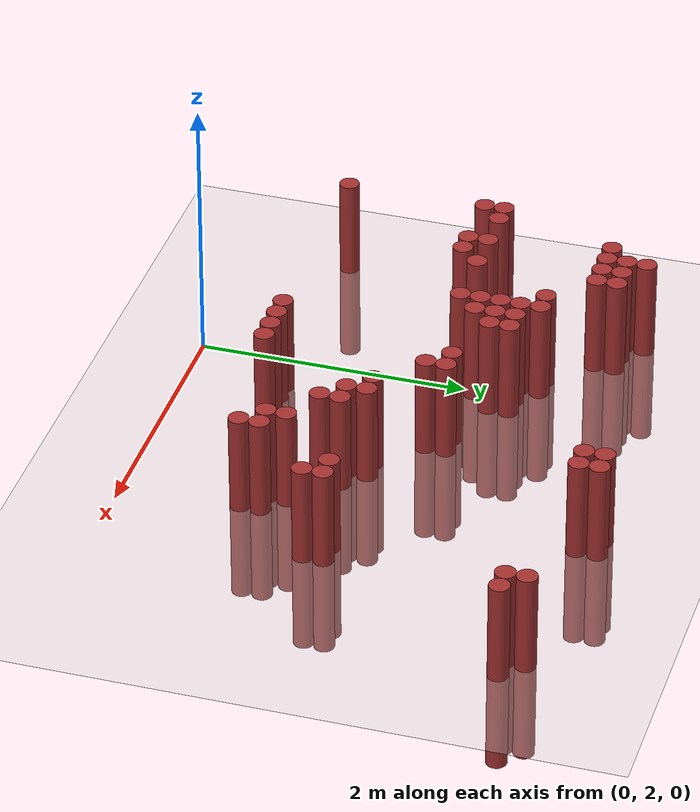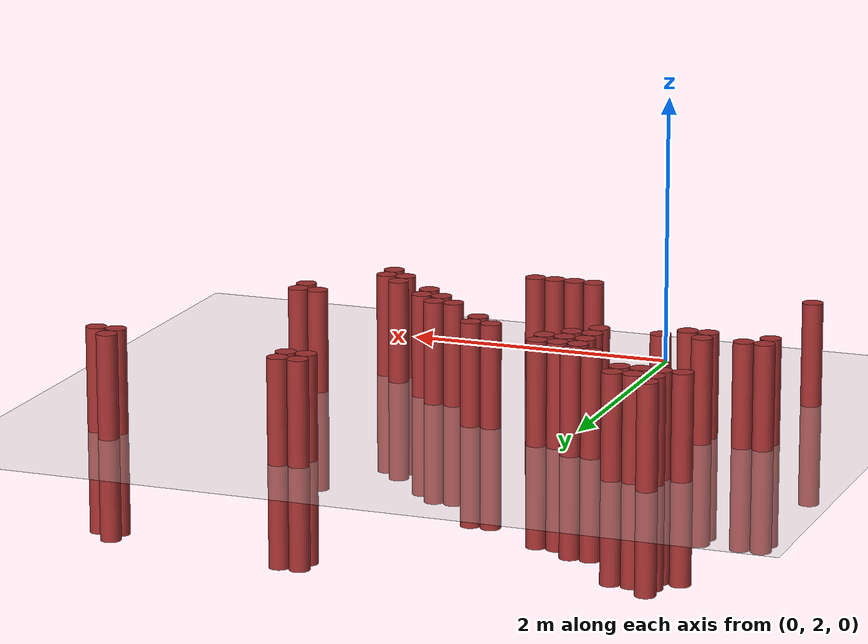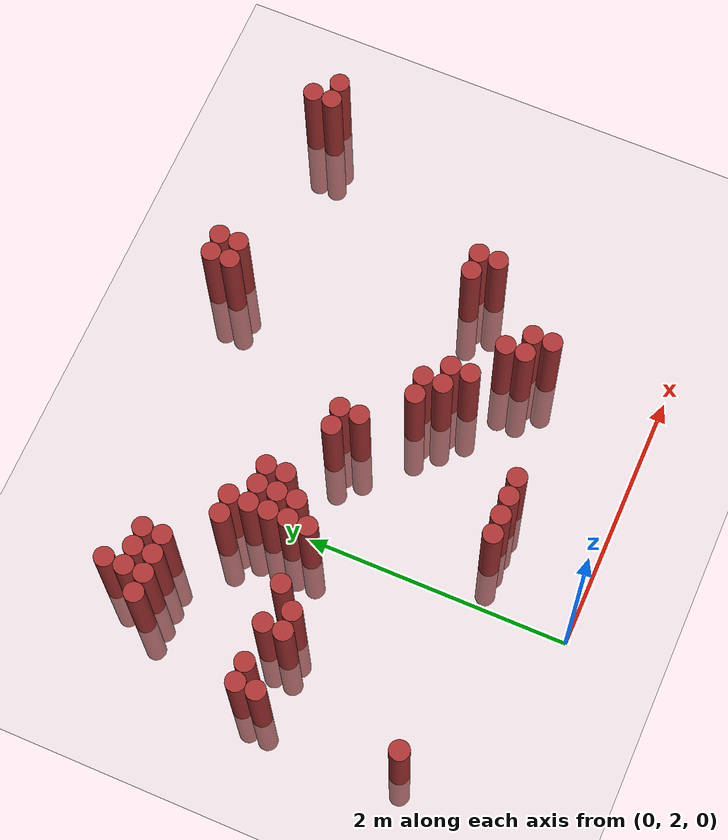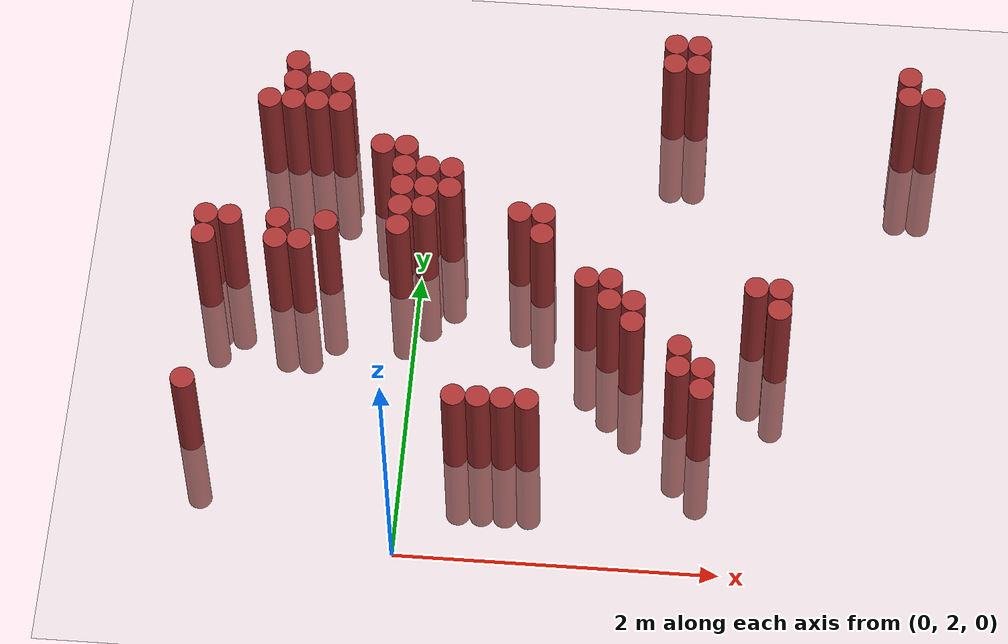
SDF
<sdf version="1.6">
 <world name="default">
  <model name="ground_plane">
   <static>1</static>
   <link name="link">
    <collision name="collision">
     <geometry><plane><normal>0 0 1</normal><size>100 100</size></plane></geometry>
     <surface><friction><ode><mu>100</mu><mu2>50</mu2></ode></friction></surface>
    </collision>
    <visual name="visual">
     <cast_shadows>0</cast_shadows>
     <geometry><plane><normal>0 0 1</normal><size>100 100</size></plane></geometry>
     <material>
      <script><uri>file://media/materials/scripts/gazebo.material</uri><name>Gazebo/Grey</name></script>
     </material>
    </visual>
   </link>
  </model>
  <model name="unit_cylinder_331">
   <static>1</static>
   <pose>-1.325000 2.725000 0.000000 0.000000 0.000000 0.000000</pose>
   <link name="link">
    <inertial>
     <mass>1</mass>
     <inertia><ixx>0.145833</ixx><ixy>0</ixy><ixz>0</ixz><iyy>0.145833</iyy><iyz>0</iyz><izz>0.125</izz></inertia>
    </inertial>
    <collision name="collision">
     <geometry><cylinder><radius>0.075000</radius><length>1.5</length></cylinder></geometry>
    </collision>
    <visual name="visual">
     <geometry><cylinder><radius>0.075000</radius><length>1.5</length></cylinder></geometry>
     <material>
      <ambient>0.648000 0.192000 0.192000 1</ambient>
      <diffuse>0.648000 0.192000 0.192000 1</diffuse>
     </material>
     <material>
      <script><name>Gazebo/Grey</name><uri>file://media/materials/scripts/gazebo.material</uri></script>
     </material>
    </visual>
   </link>
  </model>
  <model name="unit_cylinder_332">
   <static>1</static>
   <pose>-1.325000 3.775000 0.000000 0.000000 0.000000 0.000000</pose>
   <link name="link">
    <inertial>
     <mass>1</mass>
     <inertia><ixx>0.145833</ixx><ixy>0</ixy><ixz>0</ixz><iyy>0.145833</iyy><iyz>0</iyz><izz>0.125</izz></inertia>
    </inertial>
    <collision name="collision">
     <geometry><cylinder><radius>0.075000</radius><length>1.5</length></cylinder></geometry>
    </collision>
    <visual name="visual">
     <geometry><cylinder><radius>0.075000</radius><length>1.5</length></cylinder></geometry>
     <material>
      <ambient>0.648000 0.192000 0.192000 1</ambient>
      <diffuse>0.648000 0.192000 0.192000 1</diffuse>
     </material>
     <material>
      <script><name>Gazebo/Grey</name><uri>file://media/materials/scripts/gazebo.material</uri></script>
     </material>
    </visual>
   </link>
  </model>
  <model name="unit_cylinder_333">
   <static>1</static>
   <pose>-1.325000 3.925000 0.000000 0.000000 0.000000 0.000000</pose>
   <link name="link">
    <inertial>
     <mass>1</mass>
     <inertia><ixx>0.145833</ixx><ixy>0</ixy><ixz>0</ixz><iyy>0.145833</iyy><iyz>0</iyz><izz>0.125</izz></inertia>
    </inertial>
    <collision name="collision">
     <geometry><cylinder><radius>0.075000</radius><length>1.5</length></cylinder></geometry>
    </collision>
    <visual name="visual">
     <geometry><cylinder><radius>0.075000</radius><length>1.5</length></cylinder></geometry>
     <material>
      <ambient>0.648000 0.192000 0.192000 1</ambient>
      <diffuse>0.648000 0.192000 0.192000 1</diffuse>
     </material>
     <material>
      <script><name>Gazebo/Grey</name><uri>file://media/materials/scripts/gazebo.material</uri></script>
     </material>
    </visual>
   </link>
  </model>
  <model name="unit_cylinder_341">
   <static>1</static>
   <pose>-1.175000 3.925000 0.000000 0.000000 0.000000 0.000000</pose>
   <link name="link">
    <inertial>
     <mass>1</mass>
     <inertia><ixx>0.145833</ixx><ixy>0</ixy><ixz>0</ixz><iyy>0.145833</iyy><iyz>0</iyz><izz>0.125</izz></inertia>
    </inertial>
    <collision name="collision">
     <geometry><cylinder><radius>0.075000</radius><length>1.5</length></cylinder></geometry>
    </collision>
    <visual name="visual">
     <geometry><cylinder><radius>0.075000</radius><length>1.5</length></cylinder></geometry>
     <material>
      <ambient>0.648000 0.192000 0.192000 1</ambient>
      <diffuse>0.648000 0.192000 0.192000 1</diffuse>
     </material>
     <material>
      <script><name>Gazebo/Grey</name><uri>file://media/materials/scripts/gazebo.material</uri></script>
     </material>
    </visual>
   </link>
  </model>
  <model name="unit_cylinder_347">
   <static>1</static>
   <pose>-1.025000 4.825000 0.000000 0.000000 0.000000 0.000000</pose>
   <link name="link">
    <inertial>
     <mass>1</mass>
     <inertia><ixx>0.145833</ixx><ixy>0</ixy><ixz>0</ixz><iyy>0.145833</iyy><iyz>0</iyz><izz>0.125</izz></inertia>
    </inertial>
    <collision name="collision">
     <geometry><cylinder><radius>0.075000</radius><length>1.5</length></cylinder></geometry>
    </collision>
    <visual name="visual">
     <geometry><cylinder><radius>0.075000</radius><length>1.5</length></cylinder></geometry>
     <material>
      <ambient>0.648000 0.192000 0.192000 1</ambient>
      <diffuse>0.648000 0.192000 0.192000 1</diffuse>
     </material>
     <material>
      <script><name>Gazebo/Grey</name><uri>file://media/materials/scripts/gazebo.material</uri></script>
     </material>
    </visual>
   </link>
  </model>
  <model name="unit_cylinder_352">
   <static>1</static>
   <pose>-0.875000 3.775000 0.000000 0.000000 0.000000 0.000000</pose>
   <link name="link">
    <inertial>
     <mass>1</mass>
     <inertia><ixx>0.145833</ixx><ixy>0</ixy><ixz>0</ixz><iyy>0.145833</iyy><iyz>0</iyz><izz>0.125</izz></inertia>
    </inertial>
    <collision name="collision">
     <geometry><cylinder><radius>0.075000</radius><length>1.5</length></cylinder></geometry>
    </collision>
    <visual name="visual">
     <geometry><cylinder><radius>0.075000</radius><length>1.5</length></cylinder></geometry>
     <material>
      <ambient>0.648000 0.192000 0.192000 1</ambient>
      <diffuse>0.648000 0.192000 0.192000 1</diffuse>
     </material>
     <material>
      <script><name>Gazebo/Grey</name><uri>file://media/materials/scripts/gazebo.material</uri></script>
     </material>
    </visual>
   </link>
  </model>
  <model name="unit_cylinder_353">
   <static>1</static>
   <pose>-0.875000 3.925000 0.000000 0.000000 0.000000 0.000000</pose>
   <link name="link">
    <inertial>
     <mass>1</mass>
     <inertia><ixx>0.145833</ixx><ixy>0</ixy><ixz>0</ixz><iyy>0.145833</iyy><iyz>0</iyz><izz>0.125</izz></inertia>
    </inertial>
    <collision name="collision">
     <geometry><cylinder><radius>0.075000</radius><length>1.5</length></cylinder></geometry>
    </collision>
    <visual name="visual">
     <geometry><cylinder><radius>0.075000</radius><length>1.5</length></cylinder></geometry>
     <material>
      <ambient>0.648000 0.192000 0.192000 1</ambient>
      <diffuse>0.648000 0.192000 0.192000 1</diffuse>
     </material>
     <material>
      <script><name>Gazebo/Grey</name><uri>file://media/materials/scripts/gazebo.material</uri></script>
     </material>
    </visual>
   </link>
  </model>
  <model name="unit_cylinder_354">
   <static>1</static>
   <pose>-0.875000 4.825000 0.000000 0.000000 0.000000 0.000000</pose>
   <link name="link">
    <inertial>
     <mass>1</mass>
     <inertia><ixx>0.145833</ixx><ixy>0</ixy><ixz>0</ixz><iyy>0.145833</iyy><iyz>0</iyz><izz>0.125</izz></inertia>
    </inertial>
    <collision name="collision">
     <geometry><cylinder><radius>0.075000</radius><length>1.5</length></cylinder></geometry>
    </collision>
    <visual name="visual">
     <geometry><cylinder><radius>0.075000</radius><length>1.5</length></cylinder></geometry>
     <material>
      <ambient>0.648000 0.192000 0.192000 1</ambient>
      <diffuse>0.648000 0.192000 0.192000 1</diffuse>
     </material>
     <material>
      <script><name>Gazebo/Grey</name><uri>file://media/materials/scripts/gazebo.material</uri></script>
     </material>
    </visual>
   </link>
  </model>
  <model name="unit_cylinder_355">
   <static>1</static>
   <pose>-0.875000 4.975000 0.000000 0.000000 0.000000 0.000000</pose>
   <link name="link">
    <inertial>
     <mass>1</mass>
     <inertia><ixx>0.145833</ixx><ixy>0</ixy><ixz>0</ixz><iyy>0.145833</iyy><iyz>0</iyz><izz>0.125</izz></inertia>
    </inertial>
    <collision name="collision">
     <geometry><cylinder><radius>0.075000</radius><length>1.5</length></cylinder></geometry>
    </collision>
    <visual name="visual">
     <geometry><cylinder><radius>0.075000</radius><length>1.5</length></cylinder></geometry>
     <material>
      <ambient>0.648000 0.192000 0.192000 1</ambient>
      <diffuse>0.648000 0.192000 0.192000 1</diffuse>
     </material>
     <material>
      <script><name>Gazebo/Grey</name><uri>file://media/materials/scripts/gazebo.material</uri></script>
     </material>
    </visual>
   </link>
  </model>
  <model name="unit_cylinder_356">
   <static>1</static>
   <pose>-0.875000 5.125000 0.000000 0.000000 0.000000 0.000000</pose>
   <link name="link">
    <inertial>
     <mass>1</mass>
     <inertia><ixx>0.145833</ixx><ixy>0</ixy><ixz>0</ixz><iyy>0.145833</iyy><iyz>0</iyz><izz>0.125</izz></inertia>
    </inertial>
    <collision name="collision">
     <geometry><cylinder><radius>0.075000</radius><length>1.5</length></cylinder></geometry>
    </collision>
    <visual name="visual">
     <geometry><cylinder><radius>0.075000</radius><length>1.5</length></cylinder></geometry>
     <material>
      <ambient>0.648000 0.192000 0.192000 1</ambient>
      <diffuse>0.648000 0.192000 0.192000 1</diffuse>
     </material>
     <material>
      <script><name>Gazebo/Grey</name><uri>file://media/materials/scripts/gazebo.material</uri></script>
     </material>
    </visual>
   </link>
  </model>
  <model name="unit_cylinder_361">
   <static>1</static>
   <pose>-0.725000 3.775000 0.000000 0.000000 0.000000 0.000000</pose>
   <link name="link">
    <inertial>
     <mass>1</mass>
     <inertia><ixx>0.145833</ixx><ixy>0</ixy><ixz>0</ixz><iyy>0.145833</iyy><iyz>0</iyz><izz>0.125</izz></inertia>
    </inertial>
    <collision name="collision">
     <geometry><cylinder><radius>0.075000</radius><length>1.5</length></cylinder></geometry>
    </collision>
    <visual name="visual">
     <geometry><cylinder><radius>0.075000</radius><length>1.5</length></cylinder></geometry>
     <material>
      <ambient>0.648000 0.192000 0.192000 1</ambient>
      <diffuse>0.648000 0.192000 0.192000 1</diffuse>
     </material>
     <material>
      <script><name>Gazebo/Grey</name><uri>file://media/materials/scripts/gazebo.material</uri></script>
     </material>
    </visual>
   </link>
  </model>
  <model name="unit_cylinder_362">
   <static>1</static>
   <pose>-0.725000 4.825000 0.000000 0.000000 0.000000 0.000000</pose>
   <link name="link">
    <inertial>
     <mass>1</mass>
     <inertia><ixx>0.145833</ixx><ixy>0</ixy><ixz>0</ixz><iyy>0.145833</iyy><iyz>0</iyz><izz>0.125</izz></inertia>
    </inertial>
    <collision name="collision">
     <geometry><cylinder><radius>0.075000</radius><length>1.5</length></cylinder></geometry>
    </collision>
    <visual name="visual">
     <geometry><cylinder><radius>0.075000</radius><length>1.5</length></cylinder></geometry>
     <material>
      <ambient>0.648000 0.192000 0.192000 1</ambient>
      <diffuse>0.648000 0.192000 0.192000 1</diffuse>
     </material>
     <material>
      <script><name>Gazebo/Grey</name><uri>file://media/materials/scripts/gazebo.material</uri></script>
     </material>
    </visual>
   </link>
  </model>
  <model name="unit_cylinder_363">
   <static>1</static>
   <pose>-0.725000 4.975000 0.000000 0.000000 0.000000 0.000000</pose>
   <link name="link">
    <inertial>
     <mass>1</mass>
     <inertia><ixx>0.145833</ixx><ixy>0</ixy><ixz>0</ixz><iyy>0.145833</iyy><iyz>0</iyz><izz>0.125</izz></inertia>
    </inertial>
    <collision name="collision">
     <geometry><cylinder><radius>0.075000</radius><length>1.5</length></cylinder></geometry>
    </collision>
    <visual name="visual">
     <geometry><cylinder><radius>0.075000</radius><length>1.5</length></cylinder></geometry>
     <material>
      <ambient>0.648000 0.192000 0.192000 1</ambient>
      <diffuse>0.648000 0.192000 0.192000 1</diffuse>
     </material>
     <material>
      <script><name>Gazebo/Grey</name><uri>file://media/materials/scripts/gazebo.material</uri></script>
     </material>
    </visual>
   </link>
  </model>
  <model name="unit_cylinder_365">
   <static>1</static>
   <pose>-0.575000 3.925000 0.000000 0.000000 0.000000 0.000000</pose>
   <link name="link">
    <inertial>
     <mass>1</mass>
     <inertia><ixx>0.145833</ixx><ixy>0</ixy><ixz>0</ixz><iyy>0.145833</iyy><iyz>0</iyz><izz>0.125</izz></inertia>
    </inertial>
    <collision name="collision">
     <geometry><cylinder><radius>0.075000</radius><length>1.5</length></cylinder></geometry>
    </collision>
    <visual name="visual">
     <geometry><cylinder><radius>0.075000</radius><length>1.5</length></cylinder></geometry>
     <material>
      <ambient>0.648000 0.192000 0.192000 1</ambient>
      <diffuse>0.648000 0.192000 0.192000 1</diffuse>
     </material>
     <material>
      <script><name>Gazebo/Grey</name><uri>file://media/materials/scripts/gazebo.material</uri></script>
     </material>
    </visual>
   </link>
  </model>
  <model name="unit_cylinder_366">
   <static>1</static>
   <pose>-0.575000 4.825000 0.000000 0.000000 0.000000 0.000000</pose>
   <link name="link">
    <inertial>
     <mass>1</mass>
     <inertia><ixx>0.145833</ixx><ixy>0</ixy><ixz>0</ixz><iyy>0.145833</iyy><iyz>0</iyz><izz>0.125</izz></inertia>
    </inertial>
    <collision name="collision">
     <geometry><cylinder><radius>0.075000</radius><length>1.5</length></cylinder></geometry>
    </collision>
    <visual name="visual">
     <geometry><cylinder><radius>0.075000</radius><length>1.5</length></cylinder></geometry>
     <material>
      <ambient>0.648000 0.192000 0.192000 1</ambient>
      <diffuse>0.648000 0.192000 0.192000 1</diffuse>
     </material>
     <material>
      <script><name>Gazebo/Grey</name><uri>file://media/materials/scripts/gazebo.material</uri></script>
     </material>
    </visual>
   </link>
  </model>
  <model name="unit_cylinder_367">
   <static>1</static>
   <pose>-0.575000 4.975000 0.000000 0.000000 0.000000 0.000000</pose>
   <link name="link">
    <inertial>
     <mass>1</mass>
     <inertia><ixx>0.145833</ixx><ixy>0</ixy><ixz>0</ixz><iyy>0.145833</iyy><iyz>0</iyz><izz>0.125</izz></inertia>
    </inertial>
    <collision name="collision">
     <geometry><cylinder><radius>0.075000</radius><length>1.5</length></cylinder></geometry>
    </collision>
    <visual name="visual">
     <geometry><cylinder><radius>0.075000</radius><length>1.5</length></cylinder></geometry>
     <material>
      <ambient>0.648000 0.192000 0.192000 1</ambient>
      <diffuse>0.648000 0.192000 0.192000 1</diffuse>
     </material>
     <material>
      <script><name>Gazebo/Grey</name><uri>file://media/materials/scripts/gazebo.material</uri></script>
     </material>
    </visual>
   </link>
  </model>
  <model name="unit_cylinder_375">
   <static>1</static>
   <pose>-0.275000 4.525000 0.000000 0.000000 0.000000 0.000000</pose>
   <link name="link">
    <inertial>
     <mass>1</mass>
     <inertia><ixx>0.145833</ixx><ixy>0</ixy><ixz>0</ixz><iyy>0.145833</iyy><iyz>0</iyz><izz>0.125</izz></inertia>
    </inertial>
    <collision name="collision">
     <geometry><cylinder><radius>0.075000</radius><length>1.5</length></cylinder></geometry>
    </collision>
    <visual name="visual">
     <geometry><cylinder><radius>0.075000</radius><length>1.5</length></cylinder></geometry>
     <material>
      <ambient>0.648000 0.192000 0.192000 1</ambient>
      <diffuse>0.648000 0.192000 0.192000 1</diffuse>
     </material>
     <material>
      <script><name>Gazebo/Grey</name><uri>file://media/materials/scripts/gazebo.material</uri></script>
     </material>
    </visual>
   </link>
  </model>
  <model name="unit_cylinder_381">
   <static>1</static>
   <pose>-0.125000 3.925000 0.000000 0.000000 0.000000 0.000000</pose>
   <link name="link">
    <inertial>
     <mass>1</mass>
     <inertia><ixx>0.145833</ixx><ixy>0</ixy><ixz>0</ixz><iyy>0.145833</iyy><iyz>0</iyz><izz>0.125</izz></inertia>
    </inertial>
    <collision name="collision">
     <geometry><cylinder><radius>0.075000</radius><length>1.5</length></cylinder></geometry>
    </collision>
    <visual name="visual">
     <geometry><cylinder><radius>0.075000</radius><length>1.5</length></cylinder></geometry>
     <material>
      <ambient>0.648000 0.192000 0.192000 1</ambient>
      <diffuse>0.648000 0.192000 0.192000 1</diffuse>
     </material>
     <material>
      <script><name>Gazebo/Grey</name><uri>file://media/materials/scripts/gazebo.material</uri></script>
     </material>
    </visual>
   </link>
  </model>
  <model name="unit_cylinder_382">
   <static>1</static>
   <pose>-0.125000 4.075000 0.000000 0.000000 0.000000 0.000000</pose>
   <link name="link">
    <inertial>
     <mass>1</mass>
     <inertia><ixx>0.145833</ixx><ixy>0</ixy><ixz>0</ixz><iyy>0.145833</iyy><iyz>0</iyz><izz>0.125</izz></inertia>
    </inertial>
    <collision name="collision">
     <geometry><cylinder><radius>0.075000</radius><length>1.5</length></cylinder></geometry>
    </collision>
    <visual name="visual">
     <geometry><cylinder><radius>0.075000</radius><length>1.5</length></cylinder></geometry>
     <material>
      <ambient>0.648000 0.192000 0.192000 1</ambient>
      <diffuse>0.648000 0.192000 0.192000 1</diffuse>
     </material>
     <material>
      <script><name>Gazebo/Grey</name><uri>file://media/materials/scripts/gazebo.material</uri></script>
     </material>
    </visual>
   </link>
  </model>
  <model name="unit_cylinder_383">
   <static>1</static>
   <pose>-0.125000 4.225000 0.000000 0.000000 0.000000 0.000000</pose>
   <link name="link">
    <inertial>
     <mass>1</mass>
     <inertia><ixx>0.145833</ixx><ixy>0</ixy><ixz>0</ixz><iyy>0.145833</iyy><iyz>0</iyz><izz>0.125</izz></inertia>
    </inertial>
    <collision name="collision">
     <geometry><cylinder><radius>0.075000</radius><length>1.5</length></cylinder></geometry>
    </collision>
    <visual name="visual">
     <geometry><cylinder><radius>0.075000</radius><length>1.5</length></cylinder></geometry>
     <material>
      <ambient>0.648000 0.192000 0.192000 1</ambient>
      <diffuse>0.648000 0.192000 0.192000 1</diffuse>
     </material>
     <material>
      <script><name>Gazebo/Grey</name><uri>file://media/materials/scripts/gazebo.material</uri></script>
     </material>
    </visual>
   </link>
  </model>
  <model name="unit_cylinder_384">
   <static>1</static>
   <pose>-0.125000 4.375000 0.000000 0.000000 0.000000 0.000000</pose>
   <link name="link">
    <inertial>
     <mass>1</mass>
     <inertia><ixx>0.145833</ixx><ixy>0</ixy><ixz>0</ixz><iyy>0.145833</iyy><iyz>0</iyz><izz>0.125</izz></inertia>
    </inertial>
    <collision name="collision">
     <geometry><cylinder><radius>0.075000</radius><length>1.5</length></cylinder></geometry>
    </collision>
    <visual name="visual">
     <geometry><cylinder><radius>0.075000</radius><length>1.5</length></cylinder></geometry>
     <material>
      <ambient>0.648000 0.192000 0.192000 1</ambient>
      <diffuse>0.648000 0.192000 0.192000 1</diffuse>
     </material>
     <material>
      <script><name>Gazebo/Grey</name><uri>file://media/materials/scripts/gazebo.material</uri></script>
     </material>
    </visual>
   </link>
  </model>
  <model name="unit_cylinder_385">
   <static>1</static>
   <pose>-0.125000 4.525000 0.000000 0.000000 0.000000 0.000000</pose>
   <link name="link">
    <inertial>
     <mass>1</mass>
     <inertia><ixx>0.145833</ixx><ixy>0</ixy><ixz>0</ixz><iyy>0.145833</iyy><iyz>0</iyz><izz>0.125</izz></inertia>
    </inertial>
    <collision name="collision">
     <geometry><cylinder><radius>0.075000</radius><length>1.5</length></cylinder></geometry>
    </collision>
    <visual name="visual">
     <geometry><cylinder><radius>0.075000</radius><length>1.5</length></cylinder></geometry>
     <material>
      <ambient>0.648000 0.192000 0.192000 1</ambient>
      <diffuse>0.648000 0.192000 0.192000 1</diffuse>
     </material>
     <material>
      <script><name>Gazebo/Grey</name><uri>file://media/materials/scripts/gazebo.material</uri></script>
     </material>
    </visual>
   </link>
  </model>
  <model name="unit_cylinder_389">
   <static>1</static>
   <pose>0.025000 4.075000 0.000000 0.000000 0.000000 0.000000</pose>
   <link name="link">
    <inertial>
     <mass>1</mass>
     <inertia><ixx>0.145833</ixx><ixy>0</ixy><ixz>0</ixz><iyy>0.145833</iyy><iyz>0</iyz><izz>0.125</izz></inertia>
    </inertial>
    <collision name="collision">
     <geometry><cylinder><radius>0.075000</radius><length>1.5</length></cylinder></geometry>
    </collision>
    <visual name="visual">
     <geometry><cylinder><radius>0.075000</radius><length>1.5</length></cylinder></geometry>
     <material>
      <ambient>0.648000 0.192000 0.192000 1</ambient>
      <diffuse>0.648000 0.192000 0.192000 1</diffuse>
     </material>
     <material>
      <script><name>Gazebo/Grey</name><uri>file://media/materials/scripts/gazebo.material</uri></script>
     </material>
    </visual>
   </link>
  </model>
  <model name="unit_cylinder_390">
   <static>1</static>
   <pose>0.025000 4.225000 0.000000 0.000000 0.000000 0.000000</pose>
   <link name="link">
    <inertial>
     <mass>1</mass>
     <inertia><ixx>0.145833</ixx><ixy>0</ixy><ixz>0</ixz><iyy>0.145833</iyy><iyz>0</iyz><izz>0.125</izz></inertia>
    </inertial>
    <collision name="collision">
     <geometry><cylinder><radius>0.075000</radius><length>1.5</length></cylinder></geometry>
    </collision>
    <visual name="visual">
     <geometry><cylinder><radius>0.075000</radius><length>1.5</length></cylinder></geometry>
     <material>
      <ambient>0.648000 0.192000 0.192000 1</ambient>
      <diffuse>0.648000 0.192000 0.192000 1</diffuse>
     </material>
     <material>
      <script><name>Gazebo/Grey</name><uri>file://media/materials/scripts/gazebo.material</uri></script>
     </material>
    </visual>
   </link>
  </model>
  <model name="unit_cylinder_391">
   <static>1</static>
   <pose>0.025000 4.375000 0.000000 0.000000 0.000000 0.000000</pose>
   <link name="link">
    <inertial>
     <mass>1</mass>
     <inertia><ixx>0.145833</ixx><ixy>0</ixy><ixz>0</ixz><iyy>0.145833</iyy><iyz>0</iyz><izz>0.125</izz></inertia>
    </inertial>
    <collision name="collision">
     <geometry><cylinder><radius>0.075000</radius><length>1.5</length></cylinder></geometry>
    </collision>
    <visual name="visual">
     <geometry><cylinder><radius>0.075000</radius><length>1.5</length></cylinder></geometry>
     <material>
      <ambient>0.648000 0.192000 0.192000 1</ambient>
      <diffuse>0.648000 0.192000 0.192000 1</diffuse>
     </material>
     <material>
      <script><name>Gazebo/Grey</name><uri>file://media/materials/scripts/gazebo.material</uri></script>
     </material>
    </visual>
   </link>
  </model>
  <model name="unit_cylinder_394">
   <static>1</static>
   <pose>0.175000 4.225000 0.000000 0.000000 0.000000 0.000000</pose>
   <link name="link">
    <inertial>
     <mass>1</mass>
     <inertia><ixx>0.145833</ixx><ixy>0</ixy><ixz>0</ixz><iyy>0.145833</iyy><iyz>0</iyz><izz>0.125</izz></inertia>
    </inertial>
    <collision name="collision">
     <geometry><cylinder><radius>0.075000</radius><length>1.5</length></cylinder></geometry>
    </collision>
    <visual name="visual">
     <geometry><cylinder><radius>0.075000</radius><length>1.5</length></cylinder></geometry>
     <material>
      <ambient>0.648000 0.192000 0.192000 1</ambient>
      <diffuse>0.648000 0.192000 0.192000 1</diffuse>
     </material>
     <material>
      <script><name>Gazebo/Grey</name><uri>file://media/materials/scripts/gazebo.material</uri></script>
     </material>
    </visual>
   </link>
  </model>
  <model name="unit_cylinder_395">
   <static>1</static>
   <pose>0.175000 4.375000 0.000000 0.000000 0.000000 0.000000</pose>
   <link name="link">
    <inertial>
     <mass>1</mass>
     <inertia><ixx>0.145833</ixx><ixy>0</ixy><ixz>0</ixz><iyy>0.145833</iyy><iyz>0</iyz><izz>0.125</izz></inertia>
    </inertial>
    <collision name="collision">
     <geometry><cylinder><radius>0.075000</radius><length>1.5</length></cylinder></geometry>
    </collision>
    <visual name="visual">
     <geometry><cylinder><radius>0.075000</radius><length>1.5</length></cylinder></geometry>
     <material>
      <ambient>0.648000 0.192000 0.192000 1</ambient>
      <diffuse>0.648000 0.192000 0.192000 1</diffuse>
     </material>
     <material>
      <script><name>Gazebo/Grey</name><uri>file://media/materials/scripts/gazebo.material</uri></script>
     </material>
    </visual>
   </link>
  </model>
  <model name="unit_cylinder_398">
   <static>1</static>
   <pose>0.325000 2.725000 0.000000 0.000000 0.000000 0.000000</pose>
   <link name="link">
    <inertial>
     <mass>1</mass>
     <inertia><ixx>0.145833</ixx><ixy>0</ixy><ixz>0</ixz><iyy>0.145833</iyy><iyz>0</iyz><izz>0.125</izz></inertia>
    </inertial>
    <collision name="collision">
     <geometry><cylinder><radius>0.075000</radius><length>1.5</length></cylinder></geometry>
    </collision>
    <visual name="visual">
     <geometry><cylinder><radius>0.075000</radius><length>1.5</length></cylinder></geometry>
     <material>
      <ambient>0.648000 0.192000 0.192000 1</ambient>
      <diffuse>0.648000 0.192000 0.192000 1</diffuse>
     </material>
     <material>
      <script><name>Gazebo/Grey</name><uri>file://media/materials/scripts/gazebo.material</uri></script>
     </material>
    </visual>
   </link>
  </model>
  <model name="unit_cylinder_400">
   <static>1</static>
   <pose>0.475000 2.725000 0.000000 0.000000 0.000000 0.000000</pose>
   <link name="link">
    <inertial>
     <mass>1</mass>
     <inertia><ixx>0.145833</ixx><ixy>0</ixy><ixz>0</ixz><iyy>0.145833</iyy><iyz>0</iyz><izz>0.125</izz></inertia>
    </inertial>
    <collision name="collision">
     <geometry><cylinder><radius>0.075000</radius><length>1.5</length></cylinder></geometry>
    </collision>
    <visual name="visual">
     <geometry><cylinder><radius>0.075000</radius><length>1.5</length></cylinder></geometry>
     <material>
      <ambient>0.648000 0.192000 0.192000 1</ambient>
      <diffuse>0.648000 0.192000 0.192000 1</diffuse>
     </material>
     <material>
      <script><name>Gazebo/Grey</name><uri>file://media/materials/scripts/gazebo.material</uri></script>
     </material>
    </visual>
   </link>
  </model>
  <model name="unit_cylinder_402">
   <static>1</static>
   <pose>0.625000 2.725000 0.000000 0.000000 0.000000 0.000000</pose>
   <link name="link">
    <inertial>
     <mass>1</mass>
     <inertia><ixx>0.145833</ixx><ixy>0</ixy><ixz>0</ixz><iyy>0.145833</iyy><iyz>0</iyz><izz>0.125</izz></inertia>
    </inertial>
    <collision name="collision">
     <geometry><cylinder><radius>0.075000</radius><length>1.5</length></cylinder></geometry>
    </collision>
    <visual name="visual">
     <geometry><cylinder><radius>0.075000</radius><length>1.5</length></cylinder></geometry>
     <material>
      <ambient>0.648000 0.192000 0.192000 1</ambient>
      <diffuse>0.648000 0.192000 0.192000 1</diffuse>
     </material>
     <material>
      <script><name>Gazebo/Grey</name><uri>file://media/materials/scripts/gazebo.material</uri></script>
     </material>
    </visual>
   </link>
  </model>
  <model name="unit_cylinder_403">
   <static>1</static>
   <pose>0.625000 4.075000 0.000000 0.000000 0.000000 0.000000</pose>
   <link name="link">
    <inertial>
     <mass>1</mass>
     <inertia><ixx>0.145833</ixx><ixy>0</ixy><ixz>0</ixz><iyy>0.145833</iyy><iyz>0</iyz><izz>0.125</izz></inertia>
    </inertial>
    <collision name="collision">
     <geometry><cylinder><radius>0.075000</radius><length>1.5</length></cylinder></geometry>
    </collision>
    <visual name="visual">
     <geometry><cylinder><radius>0.075000</radius><length>1.5</length></cylinder></geometry>
     <material>
      <ambient>0.648000 0.192000 0.192000 1</ambient>
      <diffuse>0.648000 0.192000 0.192000 1</diffuse>
     </material>
     <material>
      <script><name>Gazebo/Grey</name><uri>file://media/materials/scripts/gazebo.material</uri></script>
     </material>
    </visual>
   </link>
  </model>
  <model name="unit_cylinder_406">
   <static>1</static>
   <pose>0.775000 2.725000 0.000000 0.000000 0.000000 0.000000</pose>
   <link name="link">
    <inertial>
     <mass>1</mass>
     <inertia><ixx>0.145833</ixx><ixy>0</ixy><ixz>0</ixz><iyy>0.145833</iyy><iyz>0</iyz><izz>0.125</izz></inertia>
    </inertial>
    <collision name="collision">
     <geometry><cylinder><radius>0.075000</radius><length>1.5</length></cylinder></geometry>
    </collision>
    <visual name="visual">
     <geometry><cylinder><radius>0.075000</radius><length>1.5</length></cylinder></geometry>
     <material>
      <ambient>0.648000 0.192000 0.192000 1</ambient>
      <diffuse>0.648000 0.192000 0.192000 1</diffuse>
     </material>
     <material>
      <script><name>Gazebo/Grey</name><uri>file://media/materials/scripts/gazebo.material</uri></script>
     </material>
    </visual>
   </link>
  </model>
  <model name="unit_cylinder_407">
   <static>1</static>
   <pose>0.775000 3.925000 0.000000 0.000000 0.000000 0.000000</pose>
   <link name="link">
    <inertial>
     <mass>1</mass>
     <inertia><ixx>0.145833</ixx><ixy>0</ixy><ixz>0</ixz><iyy>0.145833</iyy><iyz>0</iyz><izz>0.125</izz></inertia>
    </inertial>
    <collision name="collision">
     <geometry><cylinder><radius>0.075000</radius><length>1.5</length></cylinder></geometry>
    </collision>
    <visual name="visual">
     <geometry><cylinder><radius>0.075000</radius><length>1.5</length></cylinder></geometry>
     <material>
      <ambient>0.648000 0.192000 0.192000 1</ambient>
      <diffuse>0.648000 0.192000 0.192000 1</diffuse>
     </material>
     <material>
      <script><name>Gazebo/Grey</name><uri>file://media/materials/scripts/gazebo.material</uri></script>
     </material>
    </visual>
   </link>
  </model>
  <model name="unit_cylinder_408">
   <static>1</static>
   <pose>0.775000 4.075000 0.000000 0.000000 0.000000 0.000000</pose>
   <link name="link">
    <inertial>
     <mass>1</mass>
     <inertia><ixx>0.145833</ixx><ixy>0</ixy><ixz>0</ixz><iyy>0.145833</iyy><iyz>0</iyz><izz>0.125</izz></inertia>
    </inertial>
    <collision name="collision">
     <geometry><cylinder><radius>0.075000</radius><length>1.5</length></cylinder></geometry>
    </collision>
    <visual name="visual">
     <geometry><cylinder><radius>0.075000</radius><length>1.5</length></cylinder></geometry>
     <material>
      <ambient>0.648000 0.192000 0.192000 1</ambient>
      <diffuse>0.648000 0.192000 0.192000 1</diffuse>
     </material>
     <material>
      <script><name>Gazebo/Grey</name><uri>file://media/materials/scripts/gazebo.material</uri></script>
     </material>
    </visual>
   </link>
  </model>
  <model name="unit_cylinder_422">
   <static>1</static>
   <pose>1.075000 3.625000 0.000000 0.000000 0.000000 0.000000</pose>
   <link name="link">
    <inertial>
     <mass>1</mass>
     <inertia><ixx>0.145833</ixx><ixy>0</ixy><ixz>0</ixz><iyy>0.145833</iyy><iyz>0</iyz><izz>0.125</izz></inertia>
    </inertial>
    <collision name="collision">
     <geometry><cylinder><radius>0.075000</radius><length>1.5</length></cylinder></geometry>
    </collision>
    <visual name="visual">
     <geometry><cylinder><radius>0.075000</radius><length>1.5</length></cylinder></geometry>
     <material>
      <ambient>0.648000 0.192000 0.192000 1</ambient>
      <diffuse>0.648000 0.192000 0.192000 1</diffuse>
     </material>
     <material>
      <script><name>Gazebo/Grey</name><uri>file://media/materials/scripts/gazebo.material</uri></script>
     </material>
    </visual>
   </link>
  </model>
  <model name="unit_cylinder_424">
   <static>1</static>
   <pose>1.225000 3.475000 0.000000 0.000000 0.000000 0.000000</pose>
   <link name="link">
    <inertial>
     <mass>1</mass>
     <inertia><ixx>0.145833</ixx><ixy>0</ixy><ixz>0</ixz><iyy>0.145833</iyy><iyz>0</iyz><izz>0.125</izz></inertia>
    </inertial>
    <collision name="collision">
     <geometry><cylinder><radius>0.075000</radius><length>1.5</length></cylinder></geometry>
    </collision>
    <visual name="visual">
     <geometry><cylinder><radius>0.075000</radius><length>1.5</length></cylinder></geometry>
     <material>
      <ambient>0.648000 0.192000 0.192000 1</ambient>
      <diffuse>0.648000 0.192000 0.192000 1</diffuse>
     </material>
     <material>
      <script><name>Gazebo/Grey</name><uri>file://media/materials/scripts/gazebo.material</uri></script>
     </material>
    </visual>
   </link>
  </model>
  <model name="unit_cylinder_425">
   <static>1</static>
   <pose>1.225000 3.625000 0.000000 0.000000 0.000000 0.000000</pose>
   <link name="link">
    <inertial>
     <mass>1</mass>
     <inertia><ixx>0.145833</ixx><ixy>0</ixy><ixz>0</ixz><iyy>0.145833</iyy><iyz>0</iyz><izz>0.125</izz></inertia>
    </inertial>
    <collision name="collision">
     <geometry><cylinder><radius>0.075000</radius><length>1.5</length></cylinder></geometry>
    </collision>
    <visual name="visual">
     <geometry><cylinder><radius>0.075000</radius><length>1.5</length></cylinder></geometry>
     <material>
      <ambient>0.648000 0.192000 0.192000 1</ambient>
      <diffuse>0.648000 0.192000 0.192000 1</diffuse>
     </material>
     <material>
      <script><name>Gazebo/Grey</name><uri>file://media/materials/scripts/gazebo.material</uri></script>
     </material>
    </visual>
   </link>
  </model>
  <model name="unit_cylinder_426">
   <static>1</static>
   <pose>1.375000 3.325000 0.000000 0.000000 0.000000 0.000000</pose>
   <link name="link">
    <inertial>
     <mass>1</mass>
     <inertia><ixx>0.145833</ixx><ixy>0</ixy><ixz>0</ixz><iyy>0.145833</iyy><iyz>0</iyz><izz>0.125</izz></inertia>
    </inertial>
    <collision name="collision">
     <geometry><cylinder><radius>0.075000</radius><length>1.5</length></cylinder></geometry>
    </collision>
    <visual name="visual">
     <geometry><cylinder><radius>0.075000</radius><length>1.5</length></cylinder></geometry>
     <material>
      <ambient>0.648000 0.192000 0.192000 1</ambient>
      <diffuse>0.648000 0.192000 0.192000 1</diffuse>
     </material>
     <material>
      <script><name>Gazebo/Grey</name><uri>file://media/materials/scripts/gazebo.material</uri></script>
     </material>
    </visual>
   </link>
  </model>
  <model name="unit_cylinder_427">
   <static>1</static>
   <pose>1.375000 3.475000 0.000000 0.000000 0.000000 0.000000</pose>
   <link name="link">
    <inertial>
     <mass>1</mass>
     <inertia><ixx>0.145833</ixx><ixy>0</ixy><ixz>0</ixz><iyy>0.145833</iyy><iyz>0</iyz><izz>0.125</izz></inertia>
    </inertial>
    <collision name="collision">
     <geometry><cylinder><radius>0.075000</radius><length>1.5</length></cylinder></geometry>
    </collision>
    <visual name="visual">
     <geometry><cylinder><radius>0.075000</radius><length>1.5</length></cylinder></geometry>
     <material>
      <ambient>0.648000 0.192000 0.192000 1</ambient>
      <diffuse>0.648000 0.192000 0.192000 1</diffuse>
     </material>
     <material>
      <script><name>Gazebo/Grey</name><uri>file://media/materials/scripts/gazebo.material</uri></script>
     </material>
    </visual>
   </link>
  </model>
  <model name="unit_cylinder_428">
   <static>1</static>
   <pose>1.525000 5.275000 0.000000 0.000000 0.000000 0.000000</pose>
   <link name="link">
    <inertial>
     <mass>1</mass>
     <inertia><ixx>0.145833</ixx><ixy>0</ixy><ixz>0</ixz><iyy>0.145833</iyy><iyz>0</iyz><izz>0.125</izz></inertia>
    </inertial>
    <collision name="collision">
     <geometry><cylinder><radius>0.075000</radius><length>1.5</length></cylinder></geometry>
    </collision>
    <visual name="visual">
     <geometry><cylinder><radius>0.075000</radius><length>1.5</length></cylinder></geometry>
     <material>
      <ambient>0.648000 0.192000 0.192000 1</ambient>
      <diffuse>0.648000 0.192000 0.192000 1</diffuse>
     </material>
     <material>
      <script><name>Gazebo/Grey</name><uri>file://media/materials/scripts/gazebo.material</uri></script>
     </material>
    </visual>
   </link>
  </model>
  <model name="unit_cylinder_429">
   <static>1</static>
   <pose>1.525000 5.425000 0.000000 0.000000 0.000000 0.000000</pose>
   <link name="link">
    <inertial>
     <mass>1</mass>
     <inertia><ixx>0.145833</ixx><ixy>0</ixy><ixz>0</ixz><iyy>0.145833</iyy><iyz>0</iyz><izz>0.125</izz></inertia>
    </inertial>
    <collision name="collision">
     <geometry><cylinder><radius>0.075000</radius><length>1.5</length></cylinder></geometry>
    </collision>
    <visual name="visual">
     <geometry><cylinder><radius>0.075000</radius><length>1.5</length></cylinder></geometry>
     <material>
      <ambient>0.648000 0.192000 0.192000 1</ambient>
      <diffuse>0.648000 0.192000 0.192000 1</diffuse>
     </material>
     <material>
      <script><name>Gazebo/Grey</name><uri>file://media/materials/scripts/gazebo.material</uri></script>
     </material>
    </visual>
   </link>
  </model>
  <model name="unit_cylinder_430">
   <static>1</static>
   <pose>1.675000 3.025000 0.000000 0.000000 0.000000 0.000000</pose>
   <link name="link">
    <inertial>
     <mass>1</mass>
     <inertia><ixx>0.145833</ixx><ixy>0</ixy><ixz>0</ixz><iyy>0.145833</iyy><iyz>0</iyz><izz>0.125</izz></inertia>
    </inertial>
    <collision name="collision">
     <geometry><cylinder><radius>0.075000</radius><length>1.5</length></cylinder></geometry>
    </collision>
    <visual name="visual">
     <geometry><cylinder><radius>0.075000</radius><length>1.5</length></cylinder></geometry>
     <material>
      <ambient>0.648000 0.192000 0.192000 1</ambient>
      <diffuse>0.648000 0.192000 0.192000 1</diffuse>
     </material>
     <material>
      <script><name>Gazebo/Grey</name><uri>file://media/materials/scripts/gazebo.material</uri></script>
     </material>
    </visual>
   </link>
  </model>
  <model name="unit_cylinder_431">
   <static>1</static>
   <pose>1.675000 3.175000 0.000000 0.000000 0.000000 0.000000</pose>
   <link name="link">
    <inertial>
     <mass>1</mass>
     <inertia><ixx>0.145833</ixx><ixy>0</ixy><ixz>0</ixz><iyy>0.145833</iyy><iyz>0</iyz><izz>0.125</izz></inertia>
    </inertial>
    <collision name="collision">
     <geometry><cylinder><radius>0.075000</radius><length>1.5</length></cylinder></geometry>
    </collision>
    <visual name="visual">
     <geometry><cylinder><radius>0.075000</radius><length>1.5</length></cylinder></geometry>
     <material>
      <ambient>0.648000 0.192000 0.192000 1</ambient>
      <diffuse>0.648000 0.192000 0.192000 1</diffuse>
     </material>
     <material>
      <script><name>Gazebo/Grey</name><uri>file://media/materials/scripts/gazebo.material</uri></script>
     </material>
    </visual>
   </link>
  </model>
  <model name="unit_cylinder_432">
   <static>1</static>
   <pose>1.675000 5.275000 0.000000 0.000000 0.000000 0.000000</pose>
   <link name="link">
    <inertial>
     <mass>1</mass>
     <inertia><ixx>0.145833</ixx><ixy>0</ixy><ixz>0</ixz><iyy>0.145833</iyy><iyz>0</iyz><izz>0.125</izz></inertia>
    </inertial>
    <collision name="collision">
     <geometry><cylinder><radius>0.075000</radius><length>1.5</length></cylinder></geometry>
    </collision>
    <visual name="visual">
     <geometry><cylinder><radius>0.075000</radius><length>1.5</length></cylinder></geometry>
     <material>
      <ambient>0.648000 0.192000 0.192000 1</ambient>
      <diffuse>0.648000 0.192000 0.192000 1</diffuse>
     </material>
     <material>
      <script><name>Gazebo/Grey</name><uri>file://media/materials/scripts/gazebo.material</uri></script>
     </material>
    </visual>
   </link>
  </model>
  <model name="unit_cylinder_433">
   <static>1</static>
   <pose>1.675000 5.425000 0.000000 0.000000 0.000000 0.000000</pose>
   <link name="link">
    <inertial>
     <mass>1</mass>
     <inertia><ixx>0.145833</ixx><ixy>0</ixy><ixz>0</ixz><iyy>0.145833</iyy><iyz>0</iyz><izz>0.125</izz></inertia>
    </inertial>
    <collision name="collision">
     <geometry><cylinder><radius>0.075000</radius><length>1.5</length></cylinder></geometry>
    </collision>
    <visual name="visual">
     <geometry><cylinder><radius>0.075000</radius><length>1.5</length></cylinder></geometry>
     <material>
      <ambient>0.648000 0.192000 0.192000 1</ambient>
      <diffuse>0.648000 0.192000 0.192000 1</diffuse>
     </material>
     <material>
      <script><name>Gazebo/Grey</name><uri>file://media/materials/scripts/gazebo.material</uri></script>
     </material>
    </visual>
   </link>
  </model>
  <model name="unit_cylinder_435">
   <static>1</static>
   <pose>1.825000 2.875000 0.000000 0.000000 0.000000 0.000000</pose>
   <link name="link">
    <inertial>
     <mass>1</mass>
     <inertia><ixx>0.145833</ixx><ixy>0</ixy><ixz>0</ixz><iyy>0.145833</iyy><iyz>0</iyz><izz>0.125</izz></inertia>
    </inertial>
    <collision name="collision">
     <geometry><cylinder><radius>0.075000</radius><length>1.5</length></cylinder></geometry>
    </collision>
    <visual name="visual">
     <geometry><cylinder><radius>0.075000</radius><length>1.5</length></cylinder></geometry>
     <material>
      <ambient>0.648000 0.192000 0.192000 1</ambient>
      <diffuse>0.648000 0.192000 0.192000 1</diffuse>
     </material>
     <material>
      <script><name>Gazebo/Grey</name><uri>file://media/materials/scripts/gazebo.material</uri></script>
     </material>
    </visual>
   </link>
  </model>
  <model name="unit_cylinder_436">
   <static>1</static>
   <pose>1.825000 3.025000 0.000000 0.000000 0.000000 0.000000</pose>
   <link name="link">
    <inertial>
     <mass>1</mass>
     <inertia><ixx>0.145833</ixx><ixy>0</ixy><ixz>0</ixz><iyy>0.145833</iyy><iyz>0</iyz><izz>0.125</izz></inertia>
    </inertial>
    <collision name="collision">
     <geometry><cylinder><radius>0.075000</radius><length>1.5</length></cylinder></geometry>
    </collision>
    <visual name="visual">
     <geometry><cylinder><radius>0.075000</radius><length>1.5</length></cylinder></geometry>
     <material>
      <ambient>0.648000 0.192000 0.192000 1</ambient>
      <diffuse>0.648000 0.192000 0.192000 1</diffuse>
     </material>
     <material>
      <script><name>Gazebo/Grey</name><uri>file://media/materials/scripts/gazebo.material</uri></script>
     </material>
    </visual>
   </link>
  </model>
  <model name="unit_cylinder_439">
   <static>1</static>
   <pose>2.125000 3.625000 0.000000 0.000000 0.000000 0.000000</pose>
   <link name="link">
    <inertial>
     <mass>1</mass>
     <inertia><ixx>0.145833</ixx><ixy>0</ixy><ixz>0</ixz><iyy>0.145833</iyy><iyz>0</iyz><izz>0.125</izz></inertia>
    </inertial>
    <collision name="collision">
     <geometry><cylinder><radius>0.075000</radius><length>1.5</length></cylinder></geometry>
    </collision>
    <visual name="visual">
     <geometry><cylinder><radius>0.075000</radius><length>1.5</length></cylinder></geometry>
     <material>
      <ambient>0.648000 0.192000 0.192000 1</ambient>
      <diffuse>0.648000 0.192000 0.192000 1</diffuse>
     </material>
     <material>
      <script><name>Gazebo/Grey</name><uri>file://media/materials/scripts/gazebo.material</uri></script>
     </material>
    </visual>
   </link>
  </model>
  <model name="unit_cylinder_440">
   <static>1</static>
   <pose>2.275000 3.475000 0.000000 0.000000 0.000000 0.000000</pose>
   <link name="link">
    <inertial>
     <mass>1</mass>
     <inertia><ixx>0.145833</ixx><ixy>0</ixy><ixz>0</ixz><iyy>0.145833</iyy><iyz>0</iyz><izz>0.125</izz></inertia>
    </inertial>
    <collision name="collision">
     <geometry><cylinder><radius>0.075000</radius><length>1.5</length></cylinder></geometry>
    </collision>
    <visual name="visual">
     <geometry><cylinder><radius>0.075000</radius><length>1.5</length></cylinder></geometry>
     <material>
      <ambient>0.648000 0.192000 0.192000 1</ambient>
      <diffuse>0.648000 0.192000 0.192000 1</diffuse>
     </material>
     <material>
      <script><name>Gazebo/Grey</name><uri>file://media/materials/scripts/gazebo.material</uri></script>
     </material>
    </visual>
   </link>
  </model>
  <model name="unit_cylinder_441">
   <static>1</static>
   <pose>2.275000 3.625000 0.000000 0.000000 0.000000 0.000000</pose>
   <link name="link">
    <inertial>
     <mass>1</mass>
     <inertia><ixx>0.145833</ixx><ixy>0</ixy><ixz>0</ixz><iyy>0.145833</iyy><iyz>0</iyz><izz>0.125</izz></inertia>
    </inertial>
    <collision name="collision">
     <geometry><cylinder><radius>0.075000</radius><length>1.5</length></cylinder></geometry>
    </collision>
    <visual name="visual">
     <geometry><cylinder><radius>0.075000</radius><length>1.5</length></cylinder></geometry>
     <material>
      <ambient>0.648000 0.192000 0.192000 1</ambient>
      <diffuse>0.648000 0.192000 0.192000 1</diffuse>
     </material>
     <material>
      <script><name>Gazebo/Grey</name><uri>file://media/materials/scripts/gazebo.material</uri></script>
     </material>
    </visual>
   </link>
  </model>
  <model name="unit_cylinder_445">
   <static>1</static>
   <pose>3.025000 5.125000 0.000000 0.000000 0.000000 0.000000</pose>
   <link name="link">
    <inertial>
     <mass>1</mass>
     <inertia><ixx>0.145833</ixx><ixy>0</ixy><ixz>0</ixz><iyy>0.145833</iyy><iyz>0</iyz><izz>0.125</izz></inertia>
    </inertial>
    <collision name="collision">
     <geometry><cylinder><radius>0.075000</radius><length>1.5</length></cylinder></geometry>
    </collision>
    <visual name="visual">
     <geometry><cylinder><radius>0.075000</radius><length>1.5</length></cylinder></geometry>
     <material>
      <ambient>0.648000 0.192000 0.192000 1</ambient>
      <diffuse>0.648000 0.192000 0.192000 1</diffuse>
     </material>
     <material>
      <script><name>Gazebo/Grey</name><uri>file://media/materials/scripts/gazebo.material</uri></script>
     </material>
    </visual>
   </link>
  </model>
  <model name="unit_cylinder_446">
   <static>1</static>
   <pose>3.025000 5.275000 0.000000 0.000000 0.000000 0.000000</pose>
   <link name="link">
    <inertial>
     <mass>1</mass>
     <inertia><ixx>0.145833</ixx><ixy>0</ixy><ixz>0</ixz><iyy>0.145833</iyy><iyz>0</iyz><izz>0.125</izz></inertia>
    </inertial>
    <collision name="collision">
     <geometry><cylinder><radius>0.075000</radius><length>1.5</length></cylinder></geometry>
    </collision>
    <visual name="visual">
     <geometry><cylinder><radius>0.075000</radius><length>1.5</length></cylinder></geometry>
     <material>
      <ambient>0.648000 0.192000 0.192000 1</ambient>
      <diffuse>0.648000 0.192000 0.192000 1</diffuse>
     </material>
     <material>
      <script><name>Gazebo/Grey</name><uri>file://media/materials/scripts/gazebo.material</uri></script>
     </material>
    </visual>
   </link>
  </model>
  <model name="unit_cylinder_451">
   <static>1</static>
   <pose>3.175000 5.125000 0.000000 0.000000 0.000000 0.000000</pose>
   <link name="link">
    <inertial>
     <mass>1</mass>
     <inertia><ixx>0.145833</ixx><ixy>0</ixy><ixz>0</ixz><iyy>0.145833</iyy><iyz>0</iyz><izz>0.125</izz></inertia>
    </inertial>
    <collision name="collision">
     <geometry><cylinder><radius>0.075000</radius><length>1.5</length></cylinder></geometry>
    </collision>
    <visual name="visual">
     <geometry><cylinder><radius>0.075000</radius><length>1.5</length></cylinder></geometry>
     <material>
      <ambient>0.648000 0.192000 0.192000 1</ambient>
      <diffuse>0.648000 0.192000 0.192000 1</diffuse>
     </material>
     <material>
      <script><name>Gazebo/Grey</name><uri>file://media/materials/scripts/gazebo.material</uri></script>
     </material>
    </visual>
   </link>
  </model>
 </world>
</sdf>
